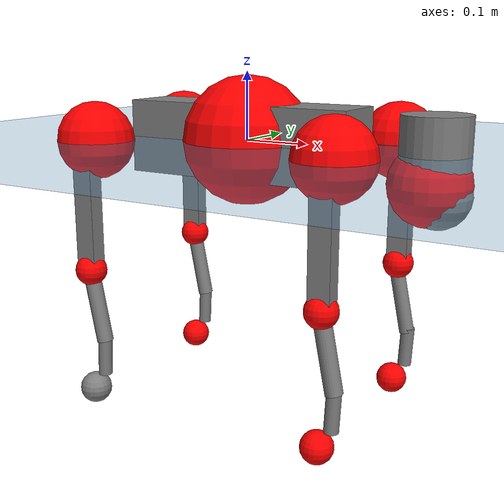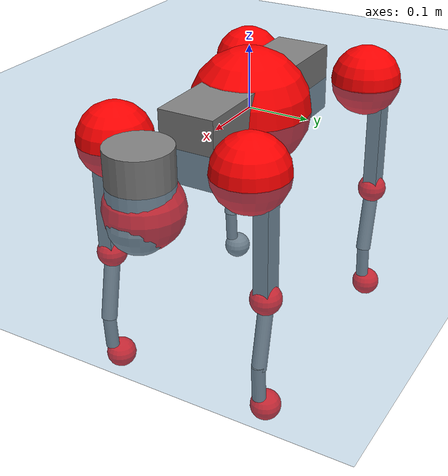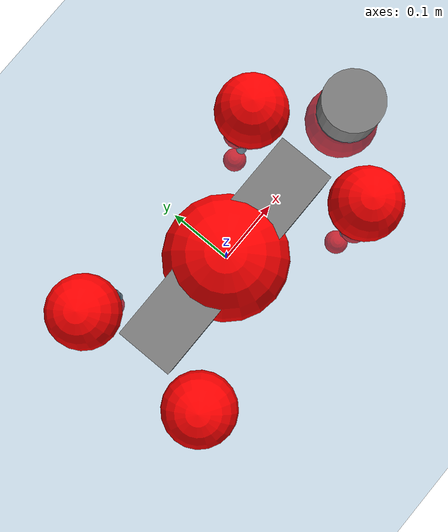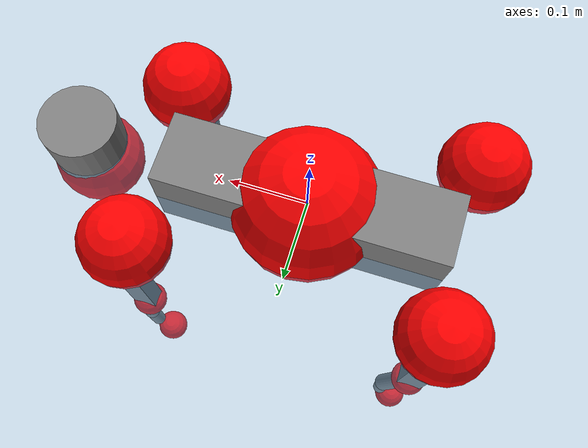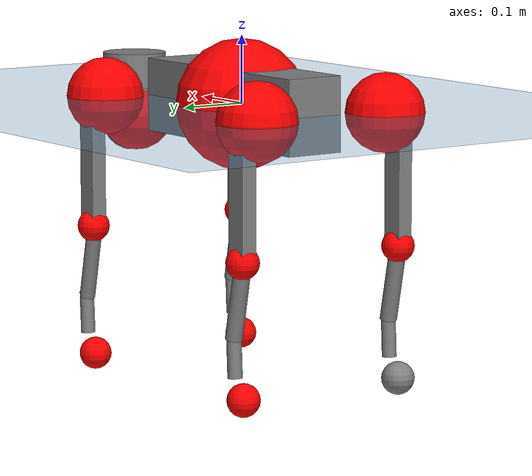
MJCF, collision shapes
<mujoco model="go2">
  <compiler angle="radian" assetdir="assets" balanceinertia="true" inertiafromgeom="false"/>

  <option timestep="0.005" density="1.2" viscosity="2e-05"/>

  <size nkey="1"/>

  <visual>
    <quality shadowsize="8192"/>
    <map shadowclip="0.5"/>
  </visual>

  <default>
    <default class="/">
      <geom contype="0" conaffinity="0" group="1" solref="-1000 -80"/>
      <site size="0.01 0.005 0.005" group="5"/>
      <general forcelimited="true" biastype="affine" gainprm="20" biasprm="0 -20 -0.5"/>
      <default class="go2">
        <joint armature="0.01" damping="0.01" frictionloss="0.2"/>
        <geom condim="1" margin="0.001"/>
        <default class="visual">
          <geom type="mesh" group="2"/>
        </default>
        <default class="collision">
          <geom group="3"/>
          <default class="foot">
            <geom size="0.022 0 0" condim="6" priority="1" friction="0.8 0.02 0.01" solimp="0.015 1 0.022"/>
          </default>
        </default>
        <default class="reward_collision_sphere">
          <geom group="5" rgba="1 0 0 1"/>
        </default>
      </default>
    </default>
  </default>

  <asset>
    <texture type="skybox" colorspace="auto" name="//unnamed_texture_0" builtin="gradient" rgb1="0.95 0.95 0.95" rgb2="0.95 0.95 0.95" width="100" height="600"/>
    <texture type="2d" colorspace="auto" name="texplane" builtin="checker" rgb1="0.345 0.575 0.748" rgb2="0.345 0.575 0.748" markrgb="1 1 1" width="512" height="512"/>
    <material name="MatPlane" class="/" texture="texplane" texuniform="true" texrepeat="2 2" specular="0.9"/>
    <material name="metal" class="/" rgba="0.9 0.95 0.95 1"/>
    <material name="black" class="/" rgba="0 0 0 1"/>
    <material name="white" class="/"/>
    <material name="gray" class="/" rgba="0.671705 0.692426 0.77427 1"/>
    <mesh name="base_0" class="/" file="base_0.obj"/>
    <mesh name="base_1" class="/" file="base_1.obj"/>
    <mesh name="base_2" class="/" file="base_2.obj"/>
    <mesh name="base_3" class="/" file="base_3.obj"/>
    <mesh name="base_4" class="/" file="base_4.obj"/>
    <mesh name="hip_0" class="/" file="hip_0.obj"/>
    <mesh name="hip_1" class="/" file="hip_1.obj"/>
    <mesh name="thigh_0" class="/" file="thigh_0.obj"/>
    <mesh name="thigh_1" class="/" file="thigh_1.obj"/>
    <mesh name="thigh_mirror_0" class="/" file="thigh_mirror_0.obj"/>
    <mesh name="thigh_mirror_1" class="/" file="thigh_mirror_1.obj"/>
    <mesh name="calf_0" class="/" file="calf_0.obj"/>
    <mesh name="calf_1" class="/" file="calf_1.obj"/>
    <mesh name="calf_mirror_0" class="/" file="calf_mirror_0.obj"/>
    <mesh name="calf_mirror_1" class="/" file="calf_mirror_1.obj"/>
    <mesh name="foot" class="/" file="foot.obj"/>
  </asset>

  <worldbody>
    <geom name="floor" class="/" size="100 100 0.125" type="plane" group="0" material="MatPlane"/>
    <light name="toplight_shadow" class="/" pos="0 0 5" dir="0.0990148 0.0990148 -0.990148" type="directional" ambient="0.04 0.04 0.04" diffuse="0.55 0.55 0.55" specular="0.12 0.12 0.12"/>
    <light name="toplight_fill" class="/" pos="0 0 5" dir="0.0990148 0.0990148 -0.990148" type="directional" castshadow="false" ambient="0.04 0.04 0.04" diffuse="0.3 0.3 0.3" specular="0.08 0.08 0.08"/>
    <body name="trunk" childclass="go2" pos="-0.000205713 0.000877177 -0.000191075" quat="1 -0.000191441 0.000389392 -4.1538e-05">
      <inertial pos="0.0220814 -0.000632084 -0.00571524" quat="-0.00167873 0.712859 -0.00567349 0.701283" mass="6.0193" diaginertia="0.112444 0.0768553 0.0152337"/>
      <joint name="//unnamed_joint_0" type="free" armature="0" damping="0" frictionloss="0"/>
      <geom name="//unnamed_geom_1" class="visual" material="black" mesh="base_0"/>
      <geom name="//unnamed_geom_2" class="visual" material="black" mesh="base_1"/>
      <geom name="//unnamed_geom_3" class="visual" material="black" mesh="base_2"/>
      <geom name="//unnamed_geom_4" class="visual" material="white" mesh="base_3"/>
      <geom name="//unnamed_geom_5" class="visual" material="gray" mesh="base_4"/>
      <geom name="trunk_1" class="collision" size="0.180451 0.044849 0.0546822" type="box"/>
      <geom name="trunk_2" class="collision" size="0.0479668 0.0431701" pos="0.288629 0 0.00911892" type="cylinder"/>
      <geom name="trunk_3" class="collision" size="0.0450888" pos="0.296731 0 -0.0547135"/>
      <geom name="//unnamed_geom_9" class="reward_collision_sphere" size="0.0959337"/>
      <geom name="//unnamed_geom_10" class="reward_collision_sphere" size="0.0575602" pos="0.283566 0 -0.0410352"/>
      <site name="imu" pos="-0.0252292 -0.00148955 0.0371165" size="0.00959337"/>
      <camera name="track" pos="0 -1.90676 0" quat="0.707107 0.707107 0 0" mode="trackcom"/>
      <camera name="ego_camera" pos="0.315973 0 0.0410352" quat="-0.5 -0.5 0.5 0.5"/>
      <body name="FL_hip" pos="0.195509 0.0447487 0.000569992" quat="1 -1.5653e-05 9.93334e-05 -2.87326e-05">
        <inertial pos="-0.00531106 0.0026162 -0.000400943" quat="0.492676 0.501318 0.507515 0.498377" mass="0.602801" diaginertia="0.000951245 0.000475789 0.000305431"/>
        <joint name="FL_hip_joint" pos="0 0 0" axis="0.999999 0.000749603 -0.00126415" stiffness="0.00694358" range="-1.03253 1.04033" armature="0.00971216" damping="0.00419787" frictionloss="0.190851"/>
        <geom name="//unnamed_geom_11" class="visual" material="metal" mesh="hip_0"/>
        <geom name="//unnamed_geom_12" class="visual" material="gray" mesh="hip_1"/>
        <geom name="//unnamed_geom_13" class="collision" size="0.0441295 0.0191867" pos="0 0.0762706 0" quat="0.707107 0.707107 0 0" type="cylinder"/>
        <geom name="//unnamed_geom_14" class="reward_collision_sphere" size="0.0575602" pos="0 0.0667368 0"/>
        <body name="FL_thigh" pos="-0.00120353 0.0901864 0.000564227" quat="1 -6.4343e-05 0.000262829 -0.000194648">
          <inertial pos="-0.00375007 -0.0202537 -0.0296212" quat="0.829862 0.0839667 -0.0212091 0.551207" mass="1.00871" diaginertia="0.00635658 0.0046392 0.000554709"/>
          <joint name="FL_thigh_joint" pos="0 0 0" axis="-0.000733529 0.999996 -0.00286296" stiffness="0.00517683" range="-1.5509 3.49004" armature="0.00990423" damping="0.00648338" frictionloss="0.199983"/>
          <geom name="//unnamed_geom_15" class="visual" material="metal" mesh="thigh_0"/>
          <geom name="//unnamed_geom_16" class="visual" material="gray" mesh="thigh_1"/>
          <geom name="//unnamed_geom_17" class="collision" size="0.102169 0.0117519 0.0163087" pos="0 0 -0.0971165" quat="0.707107 0 0.707107 0" type="box"/>
          <body name="FL_calf" pos="-0.00052666 0.000284253 -0.194615" quat="1 6.59738e-05 -0.000107315 0.000100743">
            <inertial pos="0.00658174 0.000352654 -0.127964" quat="0.710698 0.00141178 -0.00484944 0.703479" mass="0.21553" diaginertia="0.00160622 0.00116859 3.39418e-05"/>
            <joint name="FL_calf_joint" pos="0 0 0" axis="-0.000824688 0.999999 0.00119309" range="-2.70924 -0.846759" armature="0.01002" damping="0.00527361" frictionloss="0.192854"/>
            <geom name="//unnamed_geom_18" class="visual" material="gray" mesh="calf_0"/>
            <geom name="//unnamed_geom_19" class="visual" material="black" mesh="calf_1"/>
            <geom name="FL_calf0" class="collision" size="0.011512 0.0575602" pos="0.00810188 0 -0.0547135" quat="0.994493 0 -0.104807 0" type="cylinder"/>
            <geom name="//unnamed_geom_21" class="collision" size="0.0105527 0.0311784" pos="0.0202547 0 -0.13496" quat="0.999688 0 0.0249974 0" type="cylinder"/>
            <geom name="//unnamed_geom_22" class="visual" pos="0 0 -0.194233" quat="1 0 0 0" material="black" mesh="foot"/>
            <geom name="FL_foot" class="foot" size="0.0160877" pos="-0.00202547 0 -0.194233"/>
            <geom name="//unnamed_geom_24" class="reward_collision_sphere" size="0.0239834"/>
            <geom name="//unnamed_geom_25" class="reward_collision_sphere" size="0.0239834" pos="-0.00202547 0 -0.194233"/>
            <site name="FL_foot" class="foot" pos="-0.00202547 0 -0.194233" size="0.00959337"/>
          </body>
        </body>
      </body>
      <body name="FR_hip" pos="0.195766 -0.0426915 -0.000109659" quat="1 8.54272e-06 -1.11765e-05 -1.55422e-05">
        <inertial pos="-0.00531753 -0.00186474 -0.000694008" quat="0.498276 0.50558 0.49914 0.49696" mass="0.601356" diaginertia="0.000953412 0.000469643 0.00030321"/>
        <joint name="FR_hip_joint" pos="0 0 0" axis="0.999967 -0.00414779 0.00700403" range="-1.04747 1.04307" armature="0.00993532" damping="0.0158482" frictionloss="0.194967"/>
        <geom name="//unnamed_geom_26" class="visual" pos="0 3.61444e-10 1.55031e-08" quat="4.63268e-05 1 0 0" material="metal" mesh="hip_0"/>
        <geom name="//unnamed_geom_27" class="visual" pos="0 5.85943e-10 -3.8345e-08" quat="4.63268e-05 1 0 0" material="gray" mesh="hip_1"/>
        <geom name="//unnamed_geom_28" class="collision" size="0.0441295 0.0191867" pos="0 -0.0762706 0" quat="0.707107 0.707107 0 0" type="cylinder"/>
        <geom name="//unnamed_geom_29" class="reward_collision_sphere" size="0.0575602" pos="0 -0.0667368 0"/>
        <body name="FR_thigh" pos="-0.000400748 -0.0905396 -0.000262236" quat="1 1.34724e-06 -4.04414e-05 -9.24141e-06">
          <inertial pos="-0.00479583 0.022235 -0.0294213" quat="0.551729 -0.020263 0.0845798 0.829476" mass="1.02011" diaginertia="0.00640348 0.0046005 0.00055404"/>
          <joint name="FR_thigh_joint" pos="0 0 0" axis="0.000846115 -0.999999 -0.00136757" stiffness="0.0041382" range="-3.4894 1.57228" armature="0.00961656" damping="0.00967332" frictionloss="0.200615"/>
          <geom name="//unnamed_geom_30" class="visual" material="metal" mesh="thigh_mirror_0"/>
          <geom name="//unnamed_geom_31" class="visual" material="gray" mesh="thigh_mirror_1"/>
          <geom name="//unnamed_geom_32" class="collision" size="0.102169 0.0117519 0.0163087" pos="0 0 -0.0971165" quat="0.707107 0 0.707107 0" type="box"/>
          <body name="FR_calf" pos="-0.000568578 0.000181473 -0.193919" quat="1 0.000237945 0.000120133 -2.50817e-05">
            <inertial pos="0.007253 -0.0001654 -0.129235" quat="0.703543 -0.0031323 0.000110689 0.710646" mass="0.214985" diaginertia="0.00160633 0.00115115 3.4184e-05"/>
            <joint name="FR_calf_joint" pos="0 0 0" axis="-0.000117723 -1 1.40228e-05" stiffness="0.000267334" range="0.841571 2.72876" armature="0.00942988" damping="0.00881167" frictionloss="0.193322"/>
            <geom name="//unnamed_geom_33" class="visual" material="gray" mesh="calf_mirror_0"/>
            <geom name="//unnamed_geom_34" class="visual" material="black" mesh="calf_mirror_1"/>
            <geom name="FR_calf0" class="collision" size="0.0124714 0.0575602" pos="0.0101273 0 -0.0547135" quat="0.995004 0 -0.0998334 0" type="cylinder"/>
            <geom name="//unnamed_geom_36" class="collision" size="0.0105527 0.0311784" pos="0.0202547 0 -0.13496" quat="0.999688 0 0.0249974 0" type="cylinder"/>
            <geom name="//unnamed_geom_37" class="visual" pos="0 0 -0.194233" quat="1 0 0 0" material="black" mesh="foot"/>
            <geom name="FR_foot" class="foot" size="0.021198" pos="-0.00202547 0 -0.194233"/>
            <geom name="//unnamed_geom_39" class="reward_collision_sphere" size="0.0239834"/>
            <geom name="//unnamed_geom_40" class="reward_collision_sphere" size="0.0239834" pos="-0.00202547 0 -0.194233"/>
            <site name="FR_foot" class="foot" pos="-0.00202547 0 -0.194233" size="0.00959337"/>
          </body>
        </body>
      </body>
      <body name="RL_hip" pos="-0.195798 0.0435605 0.00145456" quat="1 -0.000282159 -0.000164534 -7.16924e-05">
        <inertial pos="0.00593327 0.00164906 -0.00100696" quat="0.504064 0.498397 0.4964 0.501106" mass="0.594202" diaginertia="0.000939059 0.000475031 0.000300313"/>
        <joint name="RL_hip_joint" pos="0 0 0" axis="-0.999854 -0.00938798 0.0143032" stiffness="0.00205518" range="-1.05249 1.05248" armature="0.00935042" damping="0.014519" frictionloss="0.185585"/>
        <geom name="//unnamed_geom_41" class="visual" pos="-8.78497e-10 0 -1.72206e-07" quat="4.63268e-05 0 1 0" material="metal" mesh="hip_0"/>
        <geom name="//unnamed_geom_42" class="visual" pos="-1.42415e-09 0 -1.52722e-07" quat="4.63268e-05 0 1 0" material="gray" mesh="hip_1"/>
        <geom name="//unnamed_geom_43" class="collision" size="0.0441295 0.0191867" pos="0 0.0762706 0" quat="0.707107 0.707107 0 0" type="cylinder"/>
        <geom name="//unnamed_geom_44" class="reward_collision_sphere" size="0.0575602" pos="0 0.0667368 0"/>
        <body name="RL_thigh" pos="5.42858e-05 0.0915405 0.000145587" quat="1 4.15441e-05 -6.9587e-05 -2.0808e-05">
          <inertial pos="-0.00375473 -0.0199269 -0.0301768" quat="0.831191 0.0858526 -0.0202865 0.548944" mass="1.01021" diaginertia="0.00640513 0.00455236 0.000553617"/>
          <joint name="RL_thigh_joint" pos="0 0 0" axis="-0.00192511 0.999997 -0.00120047" stiffness="0.000320843" range="-0.52473 4.54015" armature="0.00917294" damping="0.0038288" frictionloss="0.200064"/>
          <geom name="//unnamed_geom_45" class="visual" material="metal" mesh="thigh_0"/>
          <geom name="//unnamed_geom_46" class="visual" material="gray" mesh="thigh_1"/>
          <geom name="//unnamed_geom_47" class="collision" size="0.102169 0.0117519 0.0163087" pos="0 0 -0.0971165" quat="0.707107 0 0.707107 0" type="box"/>
          <body name="RL_calf" pos="0.000562047 -0.000689063 -0.194745" quat="1 -1.96596e-05 4.63771e-05 0.000270362">
            <inertial pos="0.00626497 -0.000795742 -0.128631" quat="0.711483 0.000511892 -0.00448211 0.702689" mass="0.213471" diaginertia="0.00161048 0.00116889 3.39171e-05"/>
            <joint name="RL_calf_joint" pos="0 0 0" axis="-0.00652018 0.999976 -0.00242114" stiffness="0.000826297" range="-2.70992 -0.832985" armature="0.00995827" damping="0" frictionloss="0.200664"/>
            <geom name="//unnamed_geom_48" class="visual" material="gray" mesh="calf_0"/>
            <geom name="//unnamed_geom_49" class="visual" material="black" mesh="calf_1"/>
            <geom name="RL_calf0" class="collision" size="0.0124714 0.0575602" pos="0.0101273 0 -0.0547135" quat="0.995004 0 -0.0998334 0" type="cylinder"/>
            <geom name="//unnamed_geom_51" class="collision" size="0.0105527 0.0311784" pos="0.0202547 0 -0.13496" quat="0.999688 0 0.0249974 0" type="cylinder"/>
            <geom name="//unnamed_geom_52" class="visual" pos="0 0 -0.194233" quat="1 0 0 0" material="black" mesh="foot"/>
            <geom name="RL_foot" class="foot" size="0.0189785" pos="-0.00202547 0 -0.194233"/>
            <geom name="//unnamed_geom_54" class="reward_collision_sphere" size="0.0239834"/>
            <geom name="//unnamed_geom_55" class="reward_collision_sphere" size="0.0239834" pos="-0.00202547 0 -0.194233"/>
            <site name="RL_foot" class="foot" pos="-0.00202547 0 -0.194233" size="0.00959337"/>
          </body>
        </body>
      </body>
      <body name="RR_hip" pos="-0.196043 -0.0456337 -0.00106326" quat="1 -0.000284828 0.000351605 -0.00018559">
        <inertial pos="0.00507743 -0.00213155 0.000276123" quat="0.499168 0.496517 0.498113 0.506147" mass="0.603482" diaginertia="0.000950838 0.000474826 0.000309179"/>
        <joint name="RR_hip_joint" pos="0 0 0" axis="-0.999999 0.000464741 -0.00101166" range="-1.05487 1.03011" armature="0.00966843" damping="0.00841339" frictionloss="0.183242"/>
        <geom name="//unnamed_geom_56" class="visual" pos="8.76442e-10 3.61444e-10 -1.87709e-07" quat="2.14617e-09 4.63268e-05 4.63268e-05 -1" material="metal" mesh="hip_0"/>
        <geom name="//unnamed_geom_57" class="visual" pos="1.42923e-09 5.85943e-10 -1.14377e-07" quat="2.14617e-09 4.63268e-05 4.63268e-05 -1" material="gray" mesh="hip_1"/>
        <geom name="//unnamed_geom_58" class="collision" size="0.0441295 0.0191867" pos="0 -0.0762706 0" quat="0.707107 0.707107 0 0" type="cylinder"/>
        <geom name="//unnamed_geom_59" class="reward_collision_sphere" size="0.0575602" pos="0 -0.0667368 0"/>
        <body name="RR_thigh" pos="0.00132406 -0.0922791 -0.000601589" quat="1 -4.02632e-05 0.000321527 3.37858e-05">
          <inertial pos="-0.00382507 0.0220126 -0.029872" quat="0.552537 -0.0192283 0.084301 0.828991" mass="1.02635" diaginertia="0.00638163 0.0046126 0.00056368"/>
          <joint name="RR_thigh_joint" pos="0 0 0" axis="0.00676374 -0.999975 -0.00216364" range="-4.54379 0.541407" armature="0.00930186" damping="0.00930143" frictionloss="0.194731"/>
          <geom name="//unnamed_geom_60" class="visual" material="metal" mesh="thigh_mirror_0"/>
          <geom name="//unnamed_geom_61" class="visual" material="gray" mesh="thigh_mirror_1"/>
          <geom name="//unnamed_geom_62" class="collision" size="0.102169 0.0117519 0.0163087" pos="0 0 -0.0971165" quat="0.707107 0 0.707107 0" type="box"/>
          <body name="RR_calf" pos="0.000180527 -0.000599937 -0.194635" quat="1 -0.000158889 8.02739e-05 5.07268e-05">
            <inertial pos="0.00700406 0.000602767 -0.128825" quat="0.703472 -0.0049499 0.00122823 0.710705" mass="0.211037" diaginertia="0.00159567 0.00114455 3.36232e-05"/>
            <joint name="RR_calf_joint" pos="0 0 0" axis="-0.00734207 -0.999971 0.00223408" stiffness="0.00137399" range="0.836754 2.71377" armature="0.0095954" damping="0.00767503" frictionloss="0.183749"/>
            <geom name="//unnamed_geom_63" class="visual" material="gray" mesh="calf_mirror_0"/>
            <geom name="//unnamed_geom_64" class="visual" material="black" mesh="calf_mirror_1"/>
            <geom name="RR_calf0" class="collision" size="0.0124714 0.0575602" pos="0.0101273 0 -0.0547135" quat="0.995004 0 -0.0998334 0" type="cylinder"/>
            <geom name="//unnamed_geom_66" class="collision" size="0.0105527 0.0311784" pos="0.0202547 0 -0.13496" quat="0.999688 0 0.0249974 0" type="cylinder"/>
            <geom name="//unnamed_geom_67" class="visual" pos="0 0 -0.194233" quat="1 0 0 0" material="black" mesh="foot"/>
            <geom name="RR_foot" class="foot" size="0.0242112" pos="-0.00202547 0 -0.194233"/>
            <geom name="//unnamed_geom_69" class="reward_collision_sphere" size="0.0239834"/>
            <geom name="//unnamed_geom_70" class="reward_collision_sphere" size="0.0239834" pos="-0.00202547 0 -0.194233"/>
            <site name="RR_foot" class="foot" pos="-0.00202547 0 -0.194233" size="0.00959337"/>
          </body>
        </body>
      </body>
    </body>
  </worldbody>

  <contact>
    <pair class="/" geom1="floor" geom2="FL_foot" name="//unnamed_contact_0"/>
    <pair class="/" geom1="floor" geom2="FR_foot" name="//unnamed_contact_1"/>
    <pair class="/" geom1="floor" geom2="RL_foot" name="//unnamed_contact_2"/>
    <pair class="/" geom1="floor" geom2="RR_foot" name="//unnamed_contact_3"/>
  </contact>

  <actuator>
    <general name="FL_hip" class="/" joint="FL_hip_joint" forcerange="-22.1258 22.1258" gainprm="19.289" biasprm="0 -19.289 -0.476421"/>
    <general name="FL_thigh" class="/" joint="FL_thigh_joint" forcerange="-22.8033 22.8033" gainprm="19.289" biasprm="0 -19.289 -0.476421"/>
    <general name="FL_calf" class="/" joint="FL_calf_joint" forcerange="-42.9888 42.9888" gainprm="19.289" biasprm="0 -19.289 -0.476421"/>
    <general name="FR_hip" class="/" joint="FR_hip_joint" forcerange="-23.2955 23.2955" gainprm="19.289" biasprm="0 -19.289 -0.476421"/>
    <general name="FR_thigh" class="/" joint="FR_thigh_joint" forcerange="-22.8008 22.8008" gainprm="19.289" biasprm="0 -19.289 -0.476421"/>
    <general name="FR_calf" class="/" joint="FR_calf_joint" forcerange="-44.5663 44.5663" gainprm="19.289" biasprm="0 -19.289 -0.476421"/>
    <general name="RL_hip" class="/" joint="RL_hip_joint" forcerange="-22.7127 22.7127" gainprm="19.289" biasprm="0 -19.289 -0.476421"/>
    <general name="RL_thigh" class="/" joint="RL_thigh_joint" forcerange="-22.6955 22.6955" gainprm="19.289" biasprm="0 -19.289 -0.476421"/>
    <general name="RL_calf" class="/" joint="RL_calf_joint" forcerange="-43.7358 43.7358" gainprm="19.289" biasprm="0 -19.289 -0.476421"/>
    <general name="RR_hip" class="/" joint="RR_hip_joint" forcerange="-23.3463 23.3463" gainprm="19.289" biasprm="0 -19.289 -0.476421"/>
    <general name="RR_thigh" class="/" joint="RR_thigh_joint" forcerange="-22.6137 22.6137" gainprm="19.289" biasprm="0 -19.289 -0.476421"/>
    <general name="RR_calf" class="/" joint="RR_calf_joint" forcerange="-43.892 43.892" gainprm="19.289" biasprm="0 -19.289 -0.476421"/>
  </actuator>

  <sensor>
    <gyro site="imu" name="imu_angular_velocity"/>
    <velocimeter site="imu" name="imu_linear_velocity"/>
    <framelinvel objtype="site" objname="FL_foot" name="FL_foot_global_linear_velocity"/>
    <framelinvel objtype="site" objname="FR_foot" name="FR_foot_global_linear_velocity"/>
    <framelinvel objtype="site" objname="RL_foot" name="RL_foot_global_linear_velocity"/>
    <framelinvel objtype="site" objname="RR_foot" name="RR_foot_global_linear_velocity"/>
  </sensor>

  <keyframe>
    <key name="home" qpos="0 0 0.325 1 0 0 0 0.1 0.8 -1.5 -0.1 -0.8 1.5 -0.1 0.8 -1.5 0.1 -0.8 1.5"/>
  </keyframe>
</mujoco>
